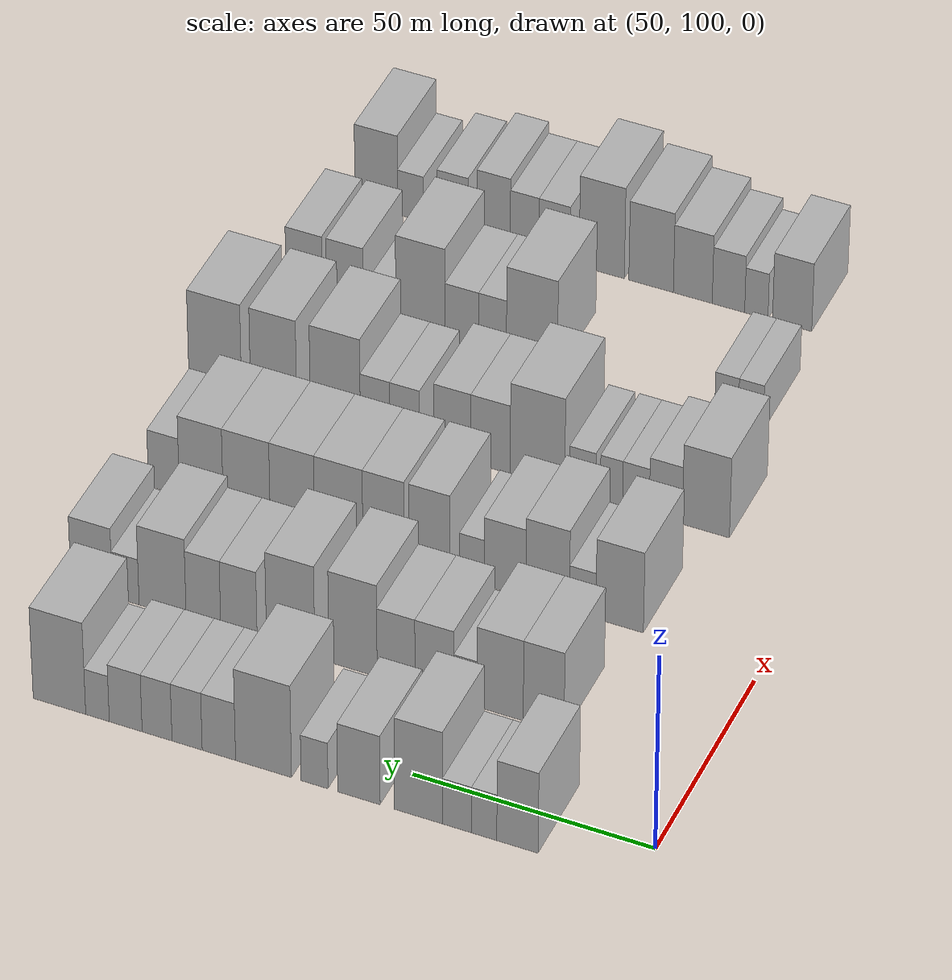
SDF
<sdf version="1.6">
 <world name="default">
  <model name="building_74">
   <static>1</static>
   <pose>50.0000 124.0413 0 0.000000 0.000000 0.000000</pose>
   <link name="link">
    <pose>0 0 10.50 0 0 0</pose>
    <collision name="collision"><geometry><box><size>20.0000 8.5036 21.0000</size></box></geometry></collision>
    <visual name="visual">
     <cast_shadows>0</cast_shadows>
     <geometry><box><size>20.0000 8.5036 21.0000</size></box></geometry>
     <material>
      <script>
       <uri>model://HANNAS_wall/materials/scripts</uri>
       <uri>model://HANNAS_wall/materials/textures</uri>
       <name>vrc/HANNAS_wall</name>
      </script>
     </material>
    </visual>
   </link>
  </model>
  <model name="building_75">
   <static>1</static>
   <pose>50.0000 130.9076 0 0.000000 0.000000 0.000000</pose>
   <link name="link">
    <pose>0 0 6.00 0 0 0</pose>
    <collision name="collision"><geometry><box><size>20.0000 5.2291 12.0000</size></box></geometry></collision>
    <visual name="visual">
     <cast_shadows>0</cast_shadows>
     <geometry><box><size>20.0000 5.2291 12.0000</size></box></geometry>
     <material>
      <script>
       <uri>model://HANNAS_wall/materials/scripts</uri>
       <uri>model://HANNAS_wall/materials/textures</uri>
       <name>vrc/HANNAS_wall</name>
      </script>
     </material>
    </visual>
   </link>
  </model>
  <model name="building_76">
   <static>1</static>
   <pose>50.0000 136.5107 0 0.000000 0.000000 0.000000</pose>
   <link name="link">
    <pose>0 0 6.00 0 0 0</pose>
    <collision name="collision"><geometry><box><size>20.0000 5.9771 12.0000</size></box></geometry></collision>
    <visual name="visual">
     <cast_shadows>0</cast_shadows>
     <geometry><box><size>20.0000 5.9771 12.0000</size></box></geometry>
     <material>
      <script>
       <uri>model://HANNAS_wall/materials/scripts</uri>
       <uri>model://HANNAS_wall/materials/textures</uri>
       <name>vrc/HANNAS_wall</name>
      </script>
     </material>
    </visual>
   </link>
  </model>
  <model name="building_77">
   <static>1</static>
   <pose>50.0000 144.4579 0 0.000000 0.000000 0.000000</pose>
   <link name="link">
    <pose>0 0 12.00 0 0 0</pose>
    <collision name="collision"><geometry><box><size>20.0000 9.9173 24.0000</size></box></geometry></collision>
    <visual name="visual">
     <cast_shadows>0</cast_shadows>
     <geometry><box><size>20.0000 9.9173 24.0000</size></box></geometry>
     <material>
      <script>
       <uri>model://HANNAS_wall/materials/scripts</uri>
       <uri>model://HANNAS_wall/materials/textures</uri>
       <name>vrc/HANNAS_wall</name>
      </script>
     </material>
    </visual>
   </link>
  </model>
  <model name="building_78">
   <static>1</static>
   <pose>50.0000 156.8406 0 0.000000 0.000000 0.000000</pose>
   <link name="link">
    <pose>0 0 9.00 0 0 0</pose>
    <collision name="collision"><geometry><box><size>20.0000 8.8481 18.0000</size></box></geometry></collision>
    <visual name="visual">
     <cast_shadows>0</cast_shadows>
     <geometry><box><size>20.0000 8.8481 18.0000</size></box></geometry>
     <material>
      <script>
       <uri>model://HANNAS_wall/materials/scripts</uri>
       <uri>model://HANNAS_wall/materials/textures</uri>
       <name>vrc/HANNAS_wall</name>
      </script>
     </material>
    </visual>
   </link>
  </model>
  <model name="building_79">
   <static>1</static>
   <pose>50.0000 166.0811 0 0.000000 0.000000 0.000000</pose>
   <link name="link">
    <pose>0 0 6.00 0 0 0</pose>
    <collision name="collision"><geometry><box><size>20.0000 5.6328 12.0000</size></box></geometry></collision>
    <visual name="visual">
     <cast_shadows>0</cast_shadows>
     <geometry><box><size>20.0000 5.6328 12.0000</size></box></geometry>
     <material>
      <script>
       <uri>model://HANNAS_wall/materials/scripts</uri>
       <uri>model://HANNAS_wall/materials/textures</uri>
       <name>vrc/HANNAS_wall</name>
      </script>
     </material>
    </visual>
   </link>
  </model>
  <model name="building_80">
   <static>1</static>
   <pose>50.0000 176.7652 0 0.000000 0.000000 0.000000</pose>
   <link name="link">
    <pose>0 0 12.00 0 0 0</pose>
    <collision name="collision"><geometry><box><size>20.0000 11.7355 24.0000</size></box></geometry></collision>
    <visual name="visual">
     <cast_shadows>0</cast_shadows>
     <geometry><box><size>20.0000 11.7355 24.0000</size></box></geometry>
     <material>
      <script>
       <uri>model://HANNAS_wall/materials/scripts</uri>
       <uri>model://HANNAS_wall/materials/textures</uri>
       <name>vrc/HANNAS_wall</name>
      </script>
     </material>
    </visual>
   </link>
  </model>
  <model name="building_81">
   <static>1</static>
   <pose>50.0000 186.1530 0 0.000000 0.000000 0.000000</pose>
   <link name="link">
    <pose>0 0 7.50 0 0 0</pose>
    <collision name="collision"><geometry><box><size>20.0000 7.0402 15.0000</size></box></geometry></collision>
    <visual name="visual">
     <cast_shadows>0</cast_shadows>
     <geometry><box><size>20.0000 7.0402 15.0000</size></box></geometry>
     <material>
      <script>
       <uri>model://HANNAS_wall/materials/scripts</uri>
       <uri>model://HANNAS_wall/materials/textures</uri>
       <name>vrc/HANNAS_wall</name>
      </script>
     </material>
    </visual>
   </link>
  </model>
  <model name="building_82">
   <static>1</static>
   <pose>50.0000 192.8551 0 0.000000 0.000000 0.000000</pose>
   <link name="link">
    <pose>0 0 7.50 0 0 0</pose>
    <collision name="collision"><geometry><box><size>20.0000 6.3639 15.0000</size></box></geometry></collision>
    <visual name="visual">
     <cast_shadows>0</cast_shadows>
     <geometry><box><size>20.0000 6.3639 15.0000</size></box></geometry>
     <material>
      <script>
       <uri>model://HANNAS_wall/materials/scripts</uri>
       <uri>model://HANNAS_wall/materials/textures</uri>
       <name>vrc/HANNAS_wall</name>
      </script>
     </material>
    </visual>
   </link>
  </model>
  <model name="building_83">
   <static>1</static>
   <pose>50.0000 199.2035 0 0.000000 0.000000 0.000000</pose>
   <link name="link">
    <pose>0 0 7.50 0 0 0</pose>
    <collision name="collision"><geometry><box><size>20.0000 6.3328 15.0000</size></box></geometry></collision>
    <visual name="visual">
     <cast_shadows>0</cast_shadows>
     <geometry><box><size>20.0000 6.3328 15.0000</size></box></geometry>
     <material>
      <script>
       <uri>model://HANNAS_wall/materials/scripts</uri>
       <uri>model://HANNAS_wall/materials/textures</uri>
       <name>vrc/HANNAS_wall</name>
      </script>
     </material>
    </visual>
   </link>
  </model>
  <model name="building_84">
   <static>1</static>
   <pose>50.0000 205.8547 0 0.000000 0.000000 0.000000</pose>
   <link name="link">
    <pose>0 0 7.50 0 0 0</pose>
    <collision name="collision"><geometry><box><size>20.0000 6.9696 15.0000</size></box></geometry></collision>
    <visual name="visual">
     <cast_shadows>0</cast_shadows>
     <geometry><box><size>20.0000 6.9696 15.0000</size></box></geometry>
     <material>
      <script>
       <uri>model://HANNAS_wall/materials/scripts</uri>
       <uri>model://HANNAS_wall/materials/textures</uri>
       <name>vrc/HANNAS_wall</name>
      </script>
     </material>
    </visual>
   </link>
  </model>
  <model name="building_85">
   <static>1</static>
   <pose>50.0000 211.8485 0 0.000000 0.000000 0.000000</pose>
   <link name="link">
    <pose>0 0 6.00 0 0 0</pose>
    <collision name="collision"><geometry><box><size>20.0000 5.0180 12.0000</size></box></geometry></collision>
    <visual name="visual">
     <cast_shadows>0</cast_shadows>
     <geometry><box><size>20.0000 5.0180 12.0000</size></box></geometry>
     <material>
      <script>
       <uri>model://HANNAS_wall/materials/scripts</uri>
       <uri>model://HANNAS_wall/materials/textures</uri>
       <name>vrc/HANNAS_wall</name>
      </script>
     </material>
    </visual>
   </link>
  </model>
  <model name="building_86">
   <static>1</static>
   <pose>50.0000 219.9474 0 0.000000 0.000000 0.000000</pose>
   <link name="link">
    <pose>0 0 12.00 0 0 0</pose>
    <collision name="collision"><geometry><box><size>20.0000 11.1800 24.0000</size></box></geometry></collision>
    <visual name="visual">
     <cast_shadows>0</cast_shadows>
     <geometry><box><size>20.0000 11.1800 24.0000</size></box></geometry>
     <material>
      <script>
       <uri>model://HANNAS_wall/materials/scripts</uri>
       <uri>model://HANNAS_wall/materials/textures</uri>
       <name>vrc/HANNAS_wall</name>
      </script>
     </material>
    </visual>
   </link>
  </model>
  <model name="building_198">
   <static>1</static>
   <pose>82.0000 132.3144 0 0.000000 0.000000 0.000000</pose>
   <link name="link">
    <pose>0 0 10.50 0 0 0</pose>
    <collision name="collision"><geometry><box><size>20.0000 8.5127 21.0000</size></box></geometry></collision>
    <visual name="visual">
     <cast_shadows>0</cast_shadows>
     <geometry><box><size>20.0000 8.5127 21.0000</size></box></geometry>
     <material>
      <script>
       <uri>model://HANNAS_wall/materials/scripts</uri>
       <uri>model://HANNAS_wall/materials/textures</uri>
       <name>vrc/HANNAS_wall</name>
      </script>
     </material>
    </visual>
   </link>
  </model>
  <model name="building_199">
   <static>1</static>
   <pose>82.0000 141.4174 0 0.000000 0.000000 0.000000</pose>
   <link name="link">
    <pose>0 0 10.50 0 0 0</pose>
    <collision name="collision"><geometry><box><size>20.0000 9.6934 21.0000</size></box></geometry></collision>
    <visual name="visual">
     <cast_shadows>0</cast_shadows>
     <geometry><box><size>20.0000 9.6934 21.0000</size></box></geometry>
     <material>
      <script>
       <uri>model://HANNAS_wall/materials/scripts</uri>
       <uri>model://HANNAS_wall/materials/textures</uri>
       <name>vrc/HANNAS_wall</name>
      </script>
     </material>
    </visual>
   </link>
  </model>
  <model name="building_200">
   <static>1</static>
   <pose>82.0000 148.6942 0 0.000000 0.000000 0.000000</pose>
   <link name="link">
    <pose>0 0 6.00 0 0 0</pose>
    <collision name="collision"><geometry><box><size>20.0000 4.8602 12.0000</size></box></geometry></collision>
    <visual name="visual">
     <cast_shadows>0</cast_shadows>
     <geometry><box><size>20.0000 4.8602 12.0000</size></box></geometry>
     <material>
      <script>
       <uri>model://HANNAS_wall/materials/scripts</uri>
       <uri>model://HANNAS_wall/materials/textures</uri>
       <name>vrc/HANNAS_wall</name>
      </script>
     </material>
    </visual>
   </link>
  </model>
  <model name="building_201">
   <static>1</static>
   <pose>82.0000 155.2026 0 0.000000 0.000000 0.000000</pose>
   <link name="link">
    <pose>0 0 9.00 0 0 0</pose>
    <collision name="collision"><geometry><box><size>20.0000 8.1565 18.0000</size></box></geometry></collision>
    <visual name="visual">
     <cast_shadows>0</cast_shadows>
     <geometry><box><size>20.0000 8.1565 18.0000</size></box></geometry>
     <material>
      <script>
       <uri>model://HANNAS_wall/materials/scripts</uri>
       <uri>model://HANNAS_wall/materials/textures</uri>
       <name>vrc/HANNAS_wall</name>
      </script>
     </material>
    </visual>
   </link>
  </model>
  <model name="building_202">
   <static>1</static>
   <pose>82.0000 163.2782 0 0.000000 0.000000 0.000000</pose>
   <link name="link">
    <pose>0 0 9.00 0 0 0</pose>
    <collision name="collision"><geometry><box><size>20.0000 7.9947 18.0000</size></box></geometry></collision>
    <visual name="visual">
     <cast_shadows>0</cast_shadows>
     <geometry><box><size>20.0000 7.9947 18.0000</size></box></geometry>
     <material>
      <script>
       <uri>model://HANNAS_wall/materials/scripts</uri>
       <uri>model://HANNAS_wall/materials/textures</uri>
       <name>vrc/HANNAS_wall</name>
      </script>
     </material>
    </visual>
   </link>
  </model>
  <model name="building_203">
   <static>1</static>
   <pose>82.0000 172.3744 0 0.000000 0.000000 0.000000</pose>
   <link name="link">
    <pose>0 0 12.00 0 0 0</pose>
    <collision name="collision"><geometry><box><size>20.0000 10.1978 24.0000</size></box></geometry></collision>
    <visual name="visual">
     <cast_shadows>0</cast_shadows>
     <geometry><box><size>20.0000 10.1978 24.0000</size></box></geometry>
     <material>
      <script>
       <uri>model://HANNAS_wall/materials/scripts</uri>
       <uri>model://HANNAS_wall/materials/textures</uri>
       <name>vrc/HANNAS_wall</name>
      </script>
     </material>
    </visual>
   </link>
  </model>
  <model name="building_204">
   <static>1</static>
   <pose>82.0000 185.6185 0 0.000000 0.000000 0.000000</pose>
   <link name="link">
    <pose>0 0 12.00 0 0 0</pose>
    <collision name="collision"><geometry><box><size>20.0000 10.2904 24.0000</size></box></geometry></collision>
    <visual name="visual">
     <cast_shadows>0</cast_shadows>
     <geometry><box><size>20.0000 10.2904 24.0000</size></box></geometry>
     <material>
      <script>
       <uri>model://HANNAS_wall/materials/scripts</uri>
       <uri>model://HANNAS_wall/materials/textures</uri>
       <name>vrc/HANNAS_wall</name>
      </script>
     </material>
    </visual>
   </link>
  </model>
  <model name="building_205">
   <static>1</static>
   <pose>82.0000 196.6512 0 0.000000 0.000000 0.000000</pose>
   <link name="link">
    <pose>0 0 9.00 0 0 0</pose>
    <collision name="collision"><geometry><box><size>20.0000 7.7751 18.0000</size></box></geometry></collision>
    <visual name="visual">
     <cast_shadows>0</cast_shadows>
     <geometry><box><size>20.0000 7.7751 18.0000</size></box></geometry>
     <material>
      <script>
       <uri>model://HANNAS_wall/materials/scripts</uri>
       <uri>model://HANNAS_wall/materials/textures</uri>
       <name>vrc/HANNAS_wall</name>
      </script>
     </material>
    </visual>
   </link>
  </model>
  <model name="building_206">
   <static>1</static>
   <pose>82.0000 204.2456 0 0.000000 0.000000 0.000000</pose>
   <link name="link">
    <pose>0 0 9.00 0 0 0</pose>
    <collision name="collision"><geometry><box><size>20.0000 7.4137 18.0000</size></box></geometry></collision>
    <visual name="visual">
     <cast_shadows>0</cast_shadows>
     <geometry><box><size>20.0000 7.4137 18.0000</size></box></geometry>
     <material>
      <script>
       <uri>model://HANNAS_wall/materials/scripts</uri>
       <uri>model://HANNAS_wall/materials/textures</uri>
       <name>vrc/HANNAS_wall</name>
      </script>
     </material>
    </visual>
   </link>
  </model>
  <model name="building_207">
   <static>1</static>
   <pose>82.0000 213.0238 0 0.000000 0.000000 0.000000</pose>
   <link name="link">
    <pose>0 0 10.50 0 0 0</pose>
    <collision name="collision"><geometry><box><size>20.0000 10.1427 21.0000</size></box></geometry></collision>
    <visual name="visual">
     <cast_shadows>0</cast_shadows>
     <geometry><box><size>20.0000 10.1427 21.0000</size></box></geometry>
     <material>
      <script>
       <uri>model://HANNAS_wall/materials/scripts</uri>
       <uri>model://HANNAS_wall/materials/textures</uri>
       <name>vrc/HANNAS_wall</name>
      </script>
     </material>
    </visual>
   </link>
  </model>
  <model name="building_208">
   <static>1</static>
   <pose>82.0000 220.9729 0 0.000000 0.000000 0.000000</pose>
   <link name="link">
    <pose>0 0 6.00 0 0 0</pose>
    <collision name="collision"><geometry><box><size>20.0000 5.7555 12.0000</size></box></geometry></collision>
    <visual name="visual">
     <cast_shadows>0</cast_shadows>
     <geometry><box><size>20.0000 5.7555 12.0000</size></box></geometry>
     <material>
      <script>
       <uri>model://HANNAS_wall/materials/scripts</uri>
       <uri>model://HANNAS_wall/materials/textures</uri>
       <name>vrc/HANNAS_wall</name>
      </script>
     </material>
    </visual>
   </link>
  </model>
  <model name="building_209">
   <static>1</static>
   <pose>82.0000 228.3318 0 0.000000 0.000000 0.000000</pose>
   <link name="link">
    <pose>0 0 9.00 0 0 0</pose>
    <collision name="collision"><geometry><box><size>20.0000 8.9624 18.0000</size></box></geometry></collision>
    <visual name="visual">
     <cast_shadows>0</cast_shadows>
     <geometry><box><size>20.0000 8.9624 18.0000</size></box></geometry>
     <material>
      <script>
       <uri>model://HANNAS_wall/materials/scripts</uri>
       <uri>model://HANNAS_wall/materials/textures</uri>
       <name>vrc/HANNAS_wall</name>
      </script>
     </material>
    </visual>
   </link>
  </model>
  <model name="building_315">
   <static>1</static>
   <pose>114.0000 129.8959 0 0.000000 0.000000 0.000000</pose>
   <link name="link">
    <pose>0 0 10.50 0 0 0</pose>
    <collision name="collision"><geometry><box><size>20.0000 10.0305 21.0000</size></box></geometry></collision>
    <visual name="visual">
     <cast_shadows>0</cast_shadows>
     <geometry><box><size>20.0000 10.0305 21.0000</size></box></geometry>
     <material>
      <script>
       <uri>model://HANNAS_wall/materials/scripts</uri>
       <uri>model://HANNAS_wall/materials/textures</uri>
       <name>vrc/HANNAS_wall</name>
      </script>
     </material>
    </visual>
   </link>
  </model>
  <model name="building_316">
   <static>1</static>
   <pose>114.0000 137.7092 0 0.000000 0.000000 0.000000</pose>
   <link name="link">
    <pose>0 0 6.00 0 0 0</pose>
    <collision name="collision"><geometry><box><size>20.0000 5.5960 12.0000</size></box></geometry></collision>
    <visual name="visual">
     <cast_shadows>0</cast_shadows>
     <geometry><box><size>20.0000 5.5960 12.0000</size></box></geometry>
     <material>
      <script>
       <uri>model://HANNAS_wall/materials/scripts</uri>
       <uri>model://HANNAS_wall/materials/textures</uri>
       <name>vrc/HANNAS_wall</name>
      </script>
     </material>
    </visual>
   </link>
  </model>
  <model name="building_317">
   <static>1</static>
   <pose>114.0000 145.1137 0 0.000000 0.000000 0.000000</pose>
   <link name="link">
    <pose>0 0 10.50 0 0 0</pose>
    <collision name="collision"><geometry><box><size>20.0000 9.2130 21.0000</size></box></geometry></collision>
    <visual name="visual">
     <cast_shadows>0</cast_shadows>
     <geometry><box><size>20.0000 9.2130 21.0000</size></box></geometry>
     <material>
      <script>
       <uri>model://HANNAS_wall/materials/scripts</uri>
       <uri>model://HANNAS_wall/materials/textures</uri>
       <name>vrc/HANNAS_wall</name>
      </script>
     </material>
    </visual>
   </link>
  </model>
  <model name="building_318">
   <static>1</static>
   <pose>114.0000 154.1741 0 0.000000 0.000000 0.000000</pose>
   <link name="link">
    <pose>0 0 9.00 0 0 0</pose>
    <collision name="collision"><geometry><box><size>20.0000 8.9079 18.0000</size></box></geometry></collision>
    <visual name="visual">
     <cast_shadows>0</cast_shadows>
     <geometry><box><size>20.0000 8.9079 18.0000</size></box></geometry>
     <material>
      <script>
       <uri>model://HANNAS_wall/materials/scripts</uri>
       <uri>model://HANNAS_wall/materials/textures</uri>
       <name>vrc/HANNAS_wall</name>
      </script>
     </material>
    </visual>
   </link>
  </model>
  <model name="building_319">
   <static>1</static>
   <pose>114.0000 161.2552 0 0.000000 0.000000 0.000000</pose>
   <link name="link">
    <pose>0 0 6.00 0 0 0</pose>
    <collision name="collision"><geometry><box><size>20.0000 5.2543 12.0000</size></box></geometry></collision>
    <visual name="visual">
     <cast_shadows>0</cast_shadows>
     <geometry><box><size>20.0000 5.2543 12.0000</size></box></geometry>
     <material>
      <script>
       <uri>model://HANNAS_wall/materials/scripts</uri>
       <uri>model://HANNAS_wall/materials/textures</uri>
       <name>vrc/HANNAS_wall</name>
      </script>
     </material>
    </visual>
   </link>
  </model>
  <model name="building_320">
   <static>1</static>
   <pose>114.0000 170.2914 0 0.000000 0.000000 0.000000</pose>
   <link name="link">
    <pose>0 0 10.50 0 0 0</pose>
    <collision name="collision"><geometry><box><size>20.0000 8.8182 21.0000</size></box></geometry></collision>
    <visual name="visual">
     <cast_shadows>0</cast_shadows>
     <geometry><box><size>20.0000 8.8182 21.0000</size></box></geometry>
     <material>
      <script>
       <uri>model://HANNAS_wall/materials/scripts</uri>
       <uri>model://HANNAS_wall/materials/textures</uri>
       <name>vrc/HANNAS_wall</name>
      </script>
     </material>
    </visual>
   </link>
  </model>
  <model name="building_321">
   <static>1</static>
   <pose>114.0000 180.1378 0 0.000000 0.000000 0.000000</pose>
   <link name="link">
    <pose>0 0 10.50 0 0 0</pose>
    <collision name="collision"><geometry><box><size>20.0000 8.8746 21.0000</size></box></geometry></collision>
    <visual name="visual">
     <cast_shadows>0</cast_shadows>
     <geometry><box><size>20.0000 8.8746 21.0000</size></box></geometry>
     <material>
      <script>
       <uri>model://HANNAS_wall/materials/scripts</uri>
       <uri>model://HANNAS_wall/materials/textures</uri>
       <name>vrc/HANNAS_wall</name>
      </script>
     </material>
    </visual>
   </link>
  </model>
  <model name="building_322">
   <static>1</static>
   <pose>114.0000 189.7854 0 0.000000 0.000000 0.000000</pose>
   <link name="link">
    <pose>0 0 10.50 0 0 0</pose>
    <collision name="collision"><geometry><box><size>20.0000 10.4207 21.0000</size></box></geometry></collision>
    <visual name="visual">
     <cast_shadows>0</cast_shadows>
     <geometry><box><size>20.0000 10.4207 21.0000</size></box></geometry>
     <material>
      <script>
       <uri>model://HANNAS_wall/materials/scripts</uri>
       <uri>model://HANNAS_wall/materials/textures</uri>
       <name>vrc/HANNAS_wall</name>
      </script>
     </material>
    </visual>
   </link>
  </model>
  <model name="building_323">
   <static>1</static>
   <pose>114.0000 199.7937 0 0.000000 0.000000 0.000000</pose>
   <link name="link">
    <pose>0 0 10.50 0 0 0</pose>
    <collision name="collision"><geometry><box><size>20.0000 9.5959 21.0000</size></box></geometry></collision>
    <visual name="visual">
     <cast_shadows>0</cast_shadows>
     <geometry><box><size>20.0000 9.5959 21.0000</size></box></geometry>
     <material>
      <script>
       <uri>model://HANNAS_wall/materials/scripts</uri>
       <uri>model://HANNAS_wall/materials/textures</uri>
       <name>vrc/HANNAS_wall</name>
      </script>
     </material>
    </visual>
   </link>
  </model>
  <model name="building_324">
   <static>1</static>
   <pose>114.0000 209.6919 0 0.000000 0.000000 0.000000</pose>
   <link name="link">
    <pose>0 0 10.50 0 0 0</pose>
    <collision name="collision"><geometry><box><size>20.0000 10.2006 21.0000</size></box></geometry></collision>
    <visual name="visual">
     <cast_shadows>0</cast_shadows>
     <geometry><box><size>20.0000 10.2006 21.0000</size></box></geometry>
     <material>
      <script>
       <uri>model://HANNAS_wall/materials/scripts</uri>
       <uri>model://HANNAS_wall/materials/textures</uri>
       <name>vrc/HANNAS_wall</name>
      </script>
     </material>
    </visual>
   </link>
  </model>
  <model name="building_325">
   <static>1</static>
   <pose>114.0000 219.5724 0 0.000000 0.000000 0.000000</pose>
   <link name="link">
    <pose>0 0 10.50 0 0 0</pose>
    <collision name="collision"><geometry><box><size>20.0000 9.5603 21.0000</size></box></geometry></collision>
    <visual name="visual">
     <cast_shadows>0</cast_shadows>
     <geometry><box><size>20.0000 9.5603 21.0000</size></box></geometry>
     <material>
      <script>
       <uri>model://HANNAS_wall/materials/scripts</uri>
       <uri>model://HANNAS_wall/materials/textures</uri>
       <name>vrc/HANNAS_wall</name>
      </script>
     </material>
    </visual>
   </link>
  </model>
  <model name="building_326">
   <static>1</static>
   <pose>114.0000 227.7351 0 0.000000 0.000000 0.000000</pose>
   <link name="link">
    <pose>0 0 7.50 0 0 0</pose>
    <collision name="collision"><geometry><box><size>20.0000 6.7651 15.0000</size></box></geometry></collision>
    <visual name="visual">
     <cast_shadows>0</cast_shadows>
     <geometry><box><size>20.0000 6.7651 15.0000</size></box></geometry>
     <material>
      <script>
       <uri>model://HANNAS_wall/materials/scripts</uri>
       <uri>model://HANNAS_wall/materials/textures</uri>
       <name>vrc/HANNAS_wall</name>
      </script>
     </material>
    </visual>
   </link>
  </model>
  <model name="building_432">
   <static>1</static>
   <pose>146.0000 124.8455 0 0.000000 0.000000 0.000000</pose>
   <link name="link">
    <pose>0 0 10.50 0 0 0</pose>
    <collision name="collision"><geometry><box><size>20.0000 10.0632 21.0000</size></box></geometry></collision>
    <visual name="visual">
     <cast_shadows>0</cast_shadows>
     <geometry><box><size>20.0000 10.0632 21.0000</size></box></geometry>
     <material>
      <script>
       <uri>model://HANNAS_wall/materials/scripts</uri>
       <uri>model://HANNAS_wall/materials/textures</uri>
       <name>vrc/HANNAS_wall</name>
      </script>
     </material>
    </visual>
   </link>
  </model>
  <model name="building_433">
   <static>1</static>
   <pose>146.0000 133.4005 0 0.000000 0.000000 0.000000</pose>
   <link name="link">
    <pose>0 0 7.50 0 0 0</pose>
    <collision name="collision"><geometry><box><size>20.0000 7.0467 15.0000</size></box></geometry></collision>
    <visual name="visual">
     <cast_shadows>0</cast_shadows>
     <geometry><box><size>20.0000 7.0467 15.0000</size></box></geometry>
     <material>
      <script>
       <uri>model://HANNAS_wall/materials/scripts</uri>
       <uri>model://HANNAS_wall/materials/textures</uri>
       <name>vrc/HANNAS_wall</name>
      </script>
     </material>
    </visual>
   </link>
  </model>
  <model name="building_434">
   <static>1</static>
   <pose>146.0000 139.7709 0 0.000000 0.000000 0.000000</pose>
   <link name="link">
    <pose>0 0 6.00 0 0 0</pose>
    <collision name="collision"><geometry><box><size>20.0000 5.6942 12.0000</size></box></geometry></collision>
    <visual name="visual">
     <cast_shadows>0</cast_shadows>
     <geometry><box><size>20.0000 5.6942 12.0000</size></box></geometry>
     <material>
      <script>
       <uri>model://HANNAS_wall/materials/scripts</uri>
       <uri>model://HANNAS_wall/materials/textures</uri>
       <name>vrc/HANNAS_wall</name>
      </script>
     </material>
    </visual>
   </link>
  </model>
  <model name="building_435">
   <static>1</static>
   <pose>146.0000 145.0201 0 0.000000 0.000000 0.000000</pose>
   <link name="link">
    <pose>0 0 6.00 0 0 0</pose>
    <collision name="collision"><geometry><box><size>20.0000 4.8041 12.0000</size></box></geometry></collision>
    <visual name="visual">
     <cast_shadows>0</cast_shadows>
     <geometry><box><size>20.0000 4.8041 12.0000</size></box></geometry>
     <material>
      <script>
       <uri>model://HANNAS_wall/materials/scripts</uri>
       <uri>model://HANNAS_wall/materials/textures</uri>
       <name>vrc/HANNAS_wall</name>
      </script>
     </material>
    </visual>
   </link>
  </model>
  <model name="building_436">
   <static>1</static>
   <pose>146.0000 151.2437 0 0.000000 0.000000 0.000000</pose>
   <link name="link">
    <pose>0 0 6.00 0 0 0</pose>
    <collision name="collision"><geometry><box><size>20.0000 5.6432 12.0000</size></box></geometry></collision>
    <visual name="visual">
     <cast_shadows>0</cast_shadows>
     <geometry><box><size>20.0000 5.6432 12.0000</size></box></geometry>
     <material>
      <script>
       <uri>model://HANNAS_wall/materials/scripts</uri>
       <uri>model://HANNAS_wall/materials/textures</uri>
       <name>vrc/HANNAS_wall</name>
      </script>
     </material>
    </visual>
   </link>
  </model>
  <model name="building_437">
   <static>1</static>
   <pose>146.0000 160.9362 0 0.000000 0.000000 0.000000</pose>
   <link name="link">
    <pose>0 0 12.00 0 0 0</pose>
    <collision name="collision"><geometry><box><size>20.0000 11.7419 24.0000</size></box></geometry></collision>
    <visual name="visual">
     <cast_shadows>0</cast_shadows>
     <geometry><box><size>20.0000 11.7419 24.0000</size></box></geometry>
     <material>
      <script>
       <uri>model://HANNAS_wall/materials/scripts</uri>
       <uri>model://HANNAS_wall/materials/textures</uri>
       <name>vrc/HANNAS_wall</name>
      </script>
     </material>
    </visual>
   </link>
  </model>
  <model name="building_438">
   <static>1</static>
   <pose>146.0000 171.0800 0 0.000000 0.000000 0.000000</pose>
   <link name="link">
    <pose>0 0 9.00 0 0 0</pose>
    <collision name="collision"><geometry><box><size>20.0000 8.5457 18.0000</size></box></geometry></collision>
    <visual name="visual">
     <cast_shadows>0</cast_shadows>
     <geometry><box><size>20.0000 8.5457 18.0000</size></box></geometry>
     <material>
      <script>
       <uri>model://HANNAS_wall/materials/scripts</uri>
       <uri>model://HANNAS_wall/materials/textures</uri>
       <name>vrc/HANNAS_wall</name>
      </script>
     </material>
    </visual>
   </link>
  </model>
  <model name="building_439">
   <static>1</static>
   <pose>146.0000 179.3976 0 0.000000 0.000000 0.000000</pose>
   <link name="link">
    <pose>0 0 9.00 0 0 0</pose>
    <collision name="collision"><geometry><box><size>20.0000 8.0894 18.0000</size></box></geometry></collision>
    <visual name="visual">
     <cast_shadows>0</cast_shadows>
     <geometry><box><size>20.0000 8.0894 18.0000</size></box></geometry>
     <material>
      <script>
       <uri>model://HANNAS_wall/materials/scripts</uri>
       <uri>model://HANNAS_wall/materials/textures</uri>
       <name>vrc/HANNAS_wall</name>
      </script>
     </material>
    </visual>
   </link>
  </model>
  <model name="building_440">
   <static>1</static>
   <pose>146.0000 189.7006 0 0.000000 0.000000 0.000000</pose>
   <link name="link">
    <pose>0 0 7.50 0 0 0</pose>
    <collision name="collision"><geometry><box><size>20.0000 6.5165 15.0000</size></box></geometry></collision>
    <visual name="visual">
     <cast_shadows>0</cast_shadows>
     <geometry><box><size>20.0000 6.5165 15.0000</size></box></geometry>
     <material>
      <script>
       <uri>model://HANNAS_wall/materials/scripts</uri>
       <uri>model://HANNAS_wall/materials/textures</uri>
       <name>vrc/HANNAS_wall</name>
      </script>
     </material>
    </visual>
   </link>
  </model>
  <model name="building_441">
   <static>1</static>
   <pose>146.0000 196.1807 0 0.000000 0.000000 0.000000</pose>
   <link name="link">
    <pose>0 0 7.50 0 0 0</pose>
    <collision name="collision"><geometry><box><size>20.0000 6.4438 15.0000</size></box></geometry></collision>
    <visual name="visual">
     <cast_shadows>0</cast_shadows>
     <geometry><box><size>20.0000 6.4438 15.0000</size></box></geometry>
     <material>
      <script>
       <uri>model://HANNAS_wall/materials/scripts</uri>
       <uri>model://HANNAS_wall/materials/textures</uri>
       <name>vrc/HANNAS_wall</name>
      </script>
     </material>
    </visual>
   </link>
  </model>
  <model name="building_442">
   <static>1</static>
   <pose>146.0000 204.8819 0 0.000000 0.000000 0.000000</pose>
   <link name="link">
    <pose>0 0 12.00 0 0 0</pose>
    <collision name="collision"><geometry><box><size>20.0000 10.9585 24.0000</size></box></geometry></collision>
    <visual name="visual">
     <cast_shadows>0</cast_shadows>
     <geometry><box><size>20.0000 10.9585 24.0000</size></box></geometry>
     <material>
      <script>
       <uri>model://HANNAS_wall/materials/scripts</uri>
       <uri>model://HANNAS_wall/materials/textures</uri>
       <name>vrc/HANNAS_wall</name>
      </script>
     </material>
    </visual>
   </link>
  </model>
  <model name="building_443">
   <static>1</static>
   <pose>146.0000 218.4398 0 0.000000 0.000000 0.000000</pose>
   <link name="link">
    <pose>0 0 12.00 0 0 0</pose>
    <collision name="collision"><geometry><box><size>20.0000 10.1573 24.0000</size></box></geometry></collision>
    <visual name="visual">
     <cast_shadows>0</cast_shadows>
     <geometry><box><size>20.0000 10.1573 24.0000</size></box></geometry>
     <material>
      <script>
       <uri>model://HANNAS_wall/materials/scripts</uri>
       <uri>model://HANNAS_wall/materials/textures</uri>
       <name>vrc/HANNAS_wall</name>
      </script>
     </material>
    </visual>
   </link>
  </model>
  <model name="building_444">
   <static>1</static>
   <pose>146.0000 231.3492 0 0.000000 0.000000 0.000000</pose>
   <link name="link">
    <pose>0 0 12.00 0 0 0</pose>
    <collision name="collision"><geometry><box><size>20.0000 11.6617 24.0000</size></box></geometry></collision>
    <visual name="visual">
     <cast_shadows>0</cast_shadows>
     <geometry><box><size>20.0000 11.6617 24.0000</size></box></geometry>
     <material>
      <script>
       <uri>model://HANNAS_wall/materials/scripts</uri>
       <uri>model://HANNAS_wall/materials/textures</uri>
       <name>vrc/HANNAS_wall</name>
      </script>
     </material>
    </visual>
   </link>
  </model>
  <model name="building_556">
   <static>1</static>
   <pose>178.0000 128.2274 0 0.000000 0.000000 0.000000</pose>
   <link name="link">
    <pose>0 0 6.00 0 0 0</pose>
    <collision name="collision"><geometry><box><size>20.0000 5.3804 12.0000</size></box></geometry></collision>
    <visual name="visual">
     <cast_shadows>0</cast_shadows>
     <geometry><box><size>20.0000 5.3804 12.0000</size></box></geometry>
     <material>
      <script>
       <uri>model://HANNAS_wall/materials/scripts</uri>
       <uri>model://HANNAS_wall/materials/textures</uri>
       <name>vrc/HANNAS_wall</name>
      </script>
     </material>
    </visual>
   </link>
  </model>
  <model name="building_557">
   <static>1</static>
   <pose>178.0000 133.4656 0 0.000000 0.000000 0.000000</pose>
   <link name="link">
    <pose>0 0 6.00 0 0 0</pose>
    <collision name="collision"><geometry><box><size>20.0000 5.0960 12.0000</size></box></geometry></collision>
    <visual name="visual">
     <cast_shadows>0</cast_shadows>
     <geometry><box><size>20.0000 5.0960 12.0000</size></box></geometry>
     <material>
      <script>
       <uri>model://HANNAS_wall/materials/scripts</uri>
       <uri>model://HANNAS_wall/materials/textures</uri>
       <name>vrc/HANNAS_wall</name>
      </script>
     </material>
    </visual>
   </link>
  </model>
  <model name="building_558">
   <static>1</static>
   <pose>178.0000 175.8078 0 0.000000 0.000000 0.000000</pose>
   <link name="link">
    <pose>0 0 12.00 0 0 0</pose>
    <collision name="collision"><geometry><box><size>20.0000 11.1961 24.0000</size></box></geometry></collision>
    <visual name="visual">
     <cast_shadows>0</cast_shadows>
     <geometry><box><size>20.0000 11.1961 24.0000</size></box></geometry>
     <material>
      <script>
       <uri>model://HANNAS_wall/materials/scripts</uri>
       <uri>model://HANNAS_wall/materials/textures</uri>
       <name>vrc/HANNAS_wall</name>
      </script>
     </material>
    </visual>
   </link>
  </model>
  <model name="building_559">
   <static>1</static>
   <pose>178.0000 184.4587 0 0.000000 0.000000 0.000000</pose>
   <link name="link">
    <pose>0 0 7.50 0 0 0</pose>
    <collision name="collision"><geometry><box><size>20.0000 6.1056 15.0000</size></box></geometry></collision>
    <visual name="visual">
     <cast_shadows>0</cast_shadows>
     <geometry><box><size>20.0000 6.1056 15.0000</size></box></geometry>
     <material>
      <script>
       <uri>model://HANNAS_wall/materials/scripts</uri>
       <uri>model://HANNAS_wall/materials/textures</uri>
       <name>vrc/HANNAS_wall</name>
      </script>
     </material>
    </visual>
   </link>
  </model>
  <model name="building_560">
   <static>1</static>
   <pose>178.0000 191.2290 0 0.000000 0.000000 0.000000</pose>
   <link name="link">
    <pose>0 0 7.50 0 0 0</pose>
    <collision name="collision"><geometry><box><size>20.0000 7.4351 15.0000</size></box></geometry></collision>
    <visual name="visual">
     <cast_shadows>0</cast_shadows>
     <geometry><box><size>20.0000 7.4351 15.0000</size></box></geometry>
     <material>
      <script>
       <uri>model://HANNAS_wall/materials/scripts</uri>
       <uri>model://HANNAS_wall/materials/textures</uri>
       <name>vrc/HANNAS_wall</name>
      </script>
     </material>
    </visual>
   </link>
  </model>
  <model name="building_561">
   <static>1</static>
   <pose>178.0000 200.3795 0 0.000000 0.000000 0.000000</pose>
   <link name="link">
    <pose>0 0 12.00 0 0 0</pose>
    <collision name="collision"><geometry><box><size>20.0000 10.8660 24.0000</size></box></geometry></collision>
    <visual name="visual">
     <cast_shadows>0</cast_shadows>
     <geometry><box><size>20.0000 10.8660 24.0000</size></box></geometry>
     <material>
      <script>
       <uri>model://HANNAS_wall/materials/scripts</uri>
       <uri>model://HANNAS_wall/materials/textures</uri>
       <name>vrc/HANNAS_wall</name>
      </script>
     </material>
    </visual>
   </link>
  </model>
  <model name="building_562">
   <static>1</static>
   <pose>178.0000 208.4482 0 0.000000 0.000000 0.000000</pose>
   <link name="link">
    <pose>0 0 6.00 0 0 0</pose>
    <collision name="collision"><geometry><box><size>20.0000 5.2714 12.0000</size></box></geometry></collision>
    <visual name="visual">
     <cast_shadows>0</cast_shadows>
     <geometry><box><size>20.0000 5.2714 12.0000</size></box></geometry>
     <material>
      <script>
       <uri>model://HANNAS_wall/materials/scripts</uri>
       <uri>model://HANNAS_wall/materials/textures</uri>
       <name>vrc/HANNAS_wall</name>
      </script>
     </material>
    </visual>
   </link>
  </model>
  <model name="building_563">
   <static>1</static>
   <pose>178.0000 217.1305 0 0.000000 0.000000 0.000000</pose>
   <link name="link">
    <pose>0 0 9.00 0 0 0</pose>
    <collision name="collision"><geometry><box><size>20.0000 8.0931 18.0000</size></box></geometry></collision>
    <visual name="visual">
     <cast_shadows>0</cast_shadows>
     <geometry><box><size>20.0000 8.0931 18.0000</size></box></geometry>
     <material>
      <script>
       <uri>model://HANNAS_wall/materials/scripts</uri>
       <uri>model://HANNAS_wall/materials/textures</uri>
       <name>vrc/HANNAS_wall</name>
      </script>
     </material>
    </visual>
   </link>
  </model>
  <model name="building_564">
   <static>1</static>
   <pose>178.0000 226.2156 0 0.000000 0.000000 0.000000</pose>
   <link name="link">
    <pose>0 0 9.00 0 0 0</pose>
    <collision name="collision"><geometry><box><size>20.0000 8.0770 18.0000</size></box></geometry></collision>
    <visual name="visual">
     <cast_shadows>0</cast_shadows>
     <geometry><box><size>20.0000 8.0770 18.0000</size></box></geometry>
     <material>
      <script>
       <uri>model://HANNAS_wall/materials/scripts</uri>
       <uri>model://HANNAS_wall/materials/textures</uri>
       <name>vrc/HANNAS_wall</name>
      </script>
     </material>
    </visual>
   </link>
  </model>
  <model name="building_664">
   <static>1</static>
   <pose>210.0000 132.0634 0 0.000000 0.000000 0.000000</pose>
   <link name="link">
    <pose>0 0 9.00 0 0 0</pose>
    <collision name="collision"><geometry><box><size>20.0000 8.5542 18.0000</size></box></geometry></collision>
    <visual name="visual">
     <cast_shadows>0</cast_shadows>
     <geometry><box><size>20.0000 8.5542 18.0000</size></box></geometry>
     <material>
      <script>
       <uri>model://HANNAS_wall/materials/scripts</uri>
       <uri>model://HANNAS_wall/materials/textures</uri>
       <name>vrc/HANNAS_wall</name>
      </script>
     </material>
    </visual>
   </link>
  </model>
  <model name="building_665">
   <static>1</static>
   <pose>210.0000 139.8886 0 0.000000 0.000000 0.000000</pose>
   <link name="link">
    <pose>0 0 6.00 0 0 0</pose>
    <collision name="collision"><geometry><box><size>20.0000 5.0962 12.0000</size></box></geometry></collision>
    <visual name="visual">
     <cast_shadows>0</cast_shadows>
     <geometry><box><size>20.0000 5.0962 12.0000</size></box></geometry>
     <material>
      <script>
       <uri>model://HANNAS_wall/materials/scripts</uri>
       <uri>model://HANNAS_wall/materials/textures</uri>
       <name>vrc/HANNAS_wall</name>
      </script>
     </material>
    </visual>
   </link>
  </model>
  <model name="building_666">
   <static>1</static>
   <pose>210.0000 145.9968 0 0.000000 0.000000 0.000000</pose>
   <link name="link">
    <pose>0 0 7.50 0 0 0</pose>
    <collision name="collision"><geometry><box><size>20.0000 7.1201 15.0000</size></box></geometry></collision>
    <visual name="visual">
     <cast_shadows>0</cast_shadows>
     <geometry><box><size>20.0000 7.1201 15.0000</size></box></geometry>
     <material>
      <script>
       <uri>model://HANNAS_wall/materials/scripts</uri>
       <uri>model://HANNAS_wall/materials/textures</uri>
       <name>vrc/HANNAS_wall</name>
      </script>
     </material>
    </visual>
   </link>
  </model>
  <model name="building_667">
   <static>1</static>
   <pose>210.0000 153.8367 0 0.000000 0.000000 0.000000</pose>
   <link name="link">
    <pose>0 0 9.00 0 0 0</pose>
    <collision name="collision"><geometry><box><size>20.0000 8.5595 18.0000</size></box></geometry></collision>
    <visual name="visual">
     <cast_shadows>0</cast_shadows>
     <geometry><box><size>20.0000 8.5595 18.0000</size></box></geometry>
     <material>
      <script>
       <uri>model://HANNAS_wall/materials/scripts</uri>
       <uri>model://HANNAS_wall/materials/textures</uri>
       <name>vrc/HANNAS_wall</name>
      </script>
     </material>
    </visual>
   </link>
  </model>
  <model name="building_668">
   <static>1</static>
   <pose>210.0000 163.0319 0 0.000000 0.000000 0.000000</pose>
   <link name="link">
    <pose>0 0 10.50 0 0 0</pose>
    <collision name="collision"><geometry><box><size>20.0000 9.8310 21.0000</size></box></geometry></collision>
    <visual name="visual">
     <cast_shadows>0</cast_shadows>
     <geometry><box><size>20.0000 9.8310 21.0000</size></box></geometry>
     <material>
      <script>
       <uri>model://HANNAS_wall/materials/scripts</uri>
       <uri>model://HANNAS_wall/materials/textures</uri>
       <name>vrc/HANNAS_wall</name>
      </script>
     </material>
    </visual>
   </link>
  </model>
  <model name="building_669">
   <static>1</static>
   <pose>210.0000 173.9558 0 0.000000 0.000000 0.000000</pose>
   <link name="link">
    <pose>0 0 12.00 0 0 0</pose>
    <collision name="collision"><geometry><box><size>20.0000 10.0167 24.0000</size></box></geometry></collision>
    <visual name="visual">
     <cast_shadows>0</cast_shadows>
     <geometry><box><size>20.0000 10.0167 24.0000</size></box></geometry>
     <material>
      <script>
       <uri>model://HANNAS_wall/materials/scripts</uri>
       <uri>model://HANNAS_wall/materials/textures</uri>
       <name>vrc/HANNAS_wall</name>
      </script>
     </material>
    </visual>
   </link>
  </model>
  <model name="building_670">
   <static>1</static>
   <pose>210.0000 184.4510 0 0.000000 0.000000 0.000000</pose>
   <link name="link">
    <pose>0 0 7.50 0 0 0</pose>
    <collision name="collision"><geometry><box><size>20.0000 6.9736 15.0000</size></box></geometry></collision>
    <visual name="visual">
     <cast_shadows>0</cast_shadows>
     <geometry><box><size>20.0000 6.9736 15.0000</size></box></geometry>
     <material>
      <script>
       <uri>model://HANNAS_wall/materials/scripts</uri>
       <uri>model://HANNAS_wall/materials/textures</uri>
       <name>vrc/HANNAS_wall</name>
      </script>
     </material>
    </visual>
   </link>
  </model>
  <model name="building_671">
   <static>1</static>
   <pose>210.0000 191.1177 0 0.000000 0.000000 0.000000</pose>
   <link name="link">
    <pose>0 0 7.50 0 0 0</pose>
    <collision name="collision"><geometry><box><size>20.0000 6.3600 15.0000</size></box></geometry></collision>
    <visual name="visual">
     <cast_shadows>0</cast_shadows>
     <geometry><box><size>20.0000 6.3600 15.0000</size></box></geometry>
     <material>
      <script>
       <uri>model://HANNAS_wall/materials/scripts</uri>
       <uri>model://HANNAS_wall/materials/textures</uri>
       <name>vrc/HANNAS_wall</name>
      </script>
     </material>
    </visual>
   </link>
  </model>
  <model name="building_672">
   <static>1</static>
   <pose>210.0000 198.0148 0 0.000000 0.000000 0.000000</pose>
   <link name="link">
    <pose>0 0 9.00 0 0 0</pose>
    <collision name="collision"><geometry><box><size>20.0000 7.4342 18.0000</size></box></geometry></collision>
    <visual name="visual">
     <cast_shadows>0</cast_shadows>
     <geometry><box><size>20.0000 7.4342 18.0000</size></box></geometry>
     <material>
      <script>
       <uri>model://HANNAS_wall/materials/scripts</uri>
       <uri>model://HANNAS_wall/materials/textures</uri>
       <name>vrc/HANNAS_wall</name>
      </script>
     </material>
    </visual>
   </link>
  </model>
  <model name="building_673">
   <static>1</static>
   <pose>210.0000 207.2171 0 0.000000 0.000000 0.000000</pose>
   <link name="link">
    <pose>0 0 7.50 0 0 0</pose>
    <collision name="collision"><geometry><box><size>20.0000 6.9703 15.0000</size></box></geometry></collision>
    <visual name="visual">
     <cast_shadows>0</cast_shadows>
     <geometry><box><size>20.0000 6.9703 15.0000</size></box></geometry>
     <material>
      <script>
       <uri>model://HANNAS_wall/materials/scripts</uri>
       <uri>model://HANNAS_wall/materials/textures</uri>
       <name>vrc/HANNAS_wall</name>
      </script>
     </material>
    </visual>
   </link>
  </model>
  <model name="building_674">
   <static>1</static>
   <pose>210.0000 216.6470 0 0.000000 0.000000 0.000000</pose>
   <link name="link">
    <pose>0 0 6.00 0 0 0</pose>
    <collision name="collision"><geometry><box><size>20.0000 5.8894 12.0000</size></box></geometry></collision>
    <visual name="visual">
     <cast_shadows>0</cast_shadows>
     <geometry><box><size>20.0000 5.8894 12.0000</size></box></geometry>
     <material>
      <script>
       <uri>model://HANNAS_wall/materials/scripts</uri>
       <uri>model://HANNAS_wall/materials/textures</uri>
       <name>vrc/HANNAS_wall</name>
      </script>
     </material>
    </visual>
   </link>
  </model>
  <model name="building_675">
   <static>1</static>
   <pose>210.0000 224.3966 0 0.000000 0.000000 0.000000</pose>
   <link name="link">
    <pose>0 0 10.50 0 0 0</pose>
    <collision name="collision"><geometry><box><size>20.0000 9.6099 21.0000</size></box></geometry></collision>
    <visual name="visual">
     <cast_shadows>0</cast_shadows>
     <geometry><box><size>20.0000 9.6099 21.0000</size></box></geometry>
     <material>
      <script>
       <uri>model://HANNAS_wall/materials/scripts</uri>
       <uri>model://HANNAS_wall/materials/textures</uri>
       <name>vrc/HANNAS_wall</name>
      </script>
     </material>
    </visual>
   </link>
  </model>
 </world>
</sdf>
